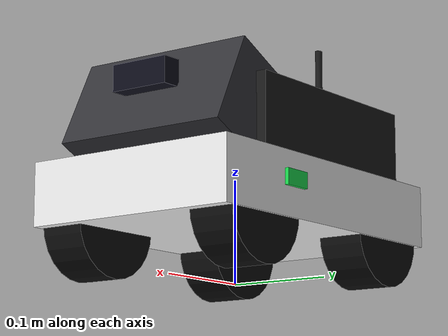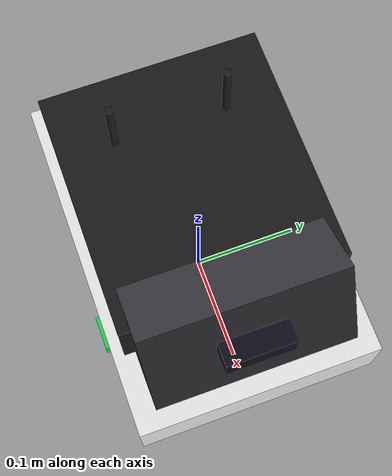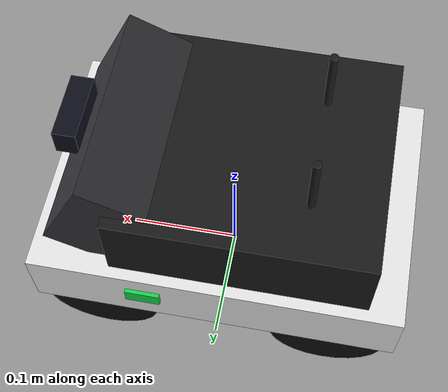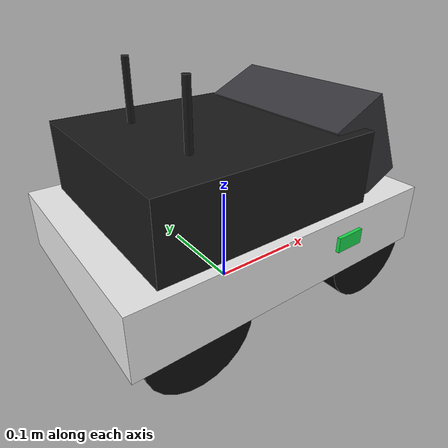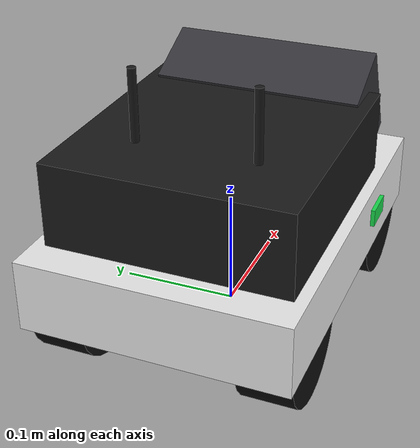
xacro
<?xml version="1.0"?>
<robot name="limo_sim" xmlns:xacro="http://ros.org/wiki/xacro">

  <xacro:arg name="drive_mode" default="diff"/>
  <xacro:property name="DRIVE_MODE" value="$(arg drive_mode)"/>

  <xacro:property name="WHEEL_RADIUS"   value="0.05"/>
  <xacro:property name="WHEEL_WIDTH"    value="0.045"/>
  <xacro:property name="WHEEL_MASS"     value="0.2"/>
  <xacro:property name="WHEELBASE_HALF" value="0.10"/>   <!-- ±x distance from center -->
  <xacro:property name="TRACK_HALF"     value="0.085"/>  <!-- ±y distance from center -->

  <xacro:property name="BASE_Z"         value="0.075"/>  <!-- base_link height above ground -->
  <xacro:property name="WHEEL_Z_OFFSET" value="-0.025"/> <!-- wheel center relative to base_link -->

  <xacro:property name="CHASSIS_X"      value="0.32"/>
  <xacro:property name="CHASSIS_Y"      value="0.22"/>
  <xacro:property name="CHASSIS_Z"      value="0.06"/>

  <xacro:property name="HOOD_X"         value="0.22"/>
  <xacro:property name="HOOD_Y"         value="0.20"/>
  <xacro:property name="HOOD_Z"         value="0.07"/>

  <!-- ================================================================
       MATERIALS (RViz2)
  ================================================================ -->
  <material name="limo_white"><color rgba="0.92 0.92 0.92 1.0"/></material>
  <material name="limo_black"><color rgba="0.10 0.10 0.10 1.0"/></material>
  <material name="limo_dark_grey"><color rgba="0.20 0.20 0.22 1.0"/></material>
  <material name="limo_green"><color rgba="0.10 0.85 0.30 1.0"/></material>
  <material name="wheel_black"><color rgba="0.05 0.05 0.05 1.0"/></material>
  <material name="camera_lens"><color rgba="0.05 0.05 0.10 1.0"/></material>

  <!-- ================================================================
       ROOT FRAMES
  ================================================================ -->
  <link name="base_footprint"/>

  <joint name="base_joint" type="fixed">
    <parent link="base_footprint"/>
    <child link="base_link"/>
    <origin xyz="0 0 ${BASE_Z}" rpy="0 0 0"/>
  </joint>

  <link name="base_link">
    <!-- Lower white deck -->
    <visual>
      <origin xyz="0 0 0" rpy="0 0 0"/>
      <geometry><box size="${CHASSIS_X} ${CHASSIS_Y} ${CHASSIS_Z}"/></geometry>
      <material name="limo_white"/>
    </visual>

    <!-- Upper black hood -->
    <visual>
      <origin xyz="-0.02 0 ${CHASSIS_Z/2 + HOOD_Z/2}" rpy="0 0 0"/>
      <geometry><box size="${HOOD_X} ${HOOD_Y} ${HOOD_Z}"/></geometry>
      <material name="limo_black"/>
    </visual>

    <!-- Tilted front cowl (tablet-style screen) -->
    <visual>
      <origin xyz="0.10 0 ${CHASSIS_Z/2 + 0.045}" rpy="0 -0.45 0"/>
      <geometry><box size="0.06 0.18 0.09"/></geometry>
      <material name="limo_dark_grey"/>
    </visual>

    <!-- Left green LED accent strip -->
    <visual>
      <origin xyz="0.06 ${CHASSIS_Y/2 + 0.001} 0.005" rpy="0 0 0"/>
      <geometry><box size="0.03 0.005 0.015"/></geometry>
      <material name="limo_green"/>
    </visual>
    <!-- Right green LED accent strip -->
    <visual>
      <origin xyz="0.06 ${-CHASSIS_Y/2 - 0.001} 0.005" rpy="0 0 0"/>
      <geometry><box size="0.03 0.005 0.015"/></geometry>
      <material name="limo_green"/>
    </visual>

    <!-- Left antenna -->
    <visual>
      <origin xyz="-0.07 0.05 ${CHASSIS_Z/2 + HOOD_Z + 0.03}" rpy="0 0 0"/>
      <geometry><cylinder radius="0.0035" length="0.06"/></geometry>
      <material name="limo_black"/>
    </visual>
    <!-- Right antenna -->
    <visual>
      <origin xyz="-0.07 -0.05 ${CHASSIS_Z/2 + HOOD_Z + 0.03}" rpy="0 0 0"/>
      <geometry><cylinder radius="0.0035" length="0.06"/></geometry>
      <material name="limo_black"/>
    </visual>

    <collision>
      <origin xyz="0 0 0.075" rpy="0 0 0"/>
      <geometry><box size="${CHASSIS_X} ${CHASSIS_Y} 0.07"/></geometry>
    </collision>

    <inertial>
      <origin xyz="0 0 0.03" rpy="0 0 0"/>
      <mass value="4.0"/>
      <!-- Solid box (0.32 x 0.22 x 0.14): ixx=m/12*(y²+z²), iyy=m/12*(x²+z²), izz=m/12*(x²+y²) -->
      <inertia ixx="0.022667" ixy="0" ixz="0"
               iyy="0.040667" iyz="0"
               izz="0.050267"/>
    </inertial>
  </link>

  <xacro:property name="WHEEL_MU1"
                  value="${0.15 if DRIVE_MODE == 'diff' else 1.0}"/>
  <xacro:property name="WHEEL_MU2_FIXED" value="1.0"/>

  <xacro:macro name="fixed_wheel" params="prefix x y">
    <joint name="${prefix}_wheel_joint" type="continuous">
      <parent link="base_link"/>
      <child  link="${prefix}_wheel_link"/>
      <origin xyz="${x} ${y} ${WHEEL_Z_OFFSET}" rpy="0 0 0"/>
      <axis xyz="0 1 0"/>
      <dynamics damping="${0.005 if DRIVE_MODE == 'diff' else 0.02}"
                friction="0.005"/>
    </joint>

    <link name="${prefix}_wheel_link">
      <visual>
        <origin xyz="0 0 0" rpy="1.5707963 0 0"/>
        <geometry><cylinder radius="${WHEEL_RADIUS}" length="${WHEEL_WIDTH}"/></geometry>
        <material name="wheel_black"/>
      </visual>
      <collision>
        <origin xyz="0 0 0" rpy="0 0 0"/>
        <geometry><sphere radius="${WHEEL_RADIUS}"/></geometry>
      </collision>
      <inertial>
        <origin xyz="0 0 0" rpy="0 0 0"/>
        <mass value="${WHEEL_MASS}"/>
        <!-- Cylinder rotated to spin about Y: principal axis is now Y.
             ixx=izz=m/12*(3r²+l²) = 0.000159
             iyy=m/2*r²            = 0.000250 -->
        <inertia ixx="0.000159" ixy="0" ixz="0"
                 iyy="0.000250" iyz="0"
                 izz="0.000159"/>
      </inertial>
    </link>

    <gazebo reference="${prefix}_wheel_link">
      <material>Gazebo/FlatBlack</material>
      <mu1>${WHEEL_MU1}</mu1>
      <mu2>${WHEEL_MU2_FIXED}</mu2>
      <kp>500000.0</kp>
      <kd>50.0</kd>
      <minDepth>0.001</minDepth>
      <maxVel>1.0</maxVel>
      <fdir1>0 1 0</fdir1>
    </gazebo>
  </xacro:macro>

  <xacro:macro name="steered_wheel" params="prefix x y">
    <!-- Steering link: tiny massless dummy that pivots about Z -->
    <joint name="${prefix}_steer_joint" type="revolute">
      <parent link="base_link"/>
      <child  link="${prefix}_steer_link"/>
      <origin xyz="${x} ${y} ${WHEEL_Z_OFFSET}" rpy="0 0 0"/>
      <axis xyz="0 0 1"/>
      <limit lower="-0.80" upper="0.80" effort="50" velocity="3.0"/>
      <dynamics damping="0.3" friction="0.0"/>
    </joint>

    <link name="${prefix}_steer_link">
      <inertial>
        <origin xyz="0 0 0" rpy="0 0 0"/>
        <mass value="0.2"/>
        <inertia ixx="0.0002" ixy="0" ixz="0"
                 iyy="0.0002" iyz="0"
                 izz="0.0002"/>
      </inertial>
    </link>

    <!-- Wheel link: spins about Y axis directly (no joint-origin rotation) -->
    <joint name="${prefix}_wheel_joint" type="continuous">
      <parent link="${prefix}_steer_link"/>
      <child  link="${prefix}_wheel_link"/>
      <origin xyz="0 0 0" rpy="0 0 0"/>
      <axis xyz="0 1 0"/>
      <dynamics damping="0.005" friction="0.005"/>
    </joint>

    <link name="${prefix}_wheel_link">
      <visual>
        <origin xyz="0 0 0" rpy="1.5707963 0 0"/>
        <geometry><cylinder radius="${WHEEL_RADIUS}" length="${WHEEL_WIDTH}"/></geometry>
        <material name="wheel_black"/>
      </visual>
      <collision>
        <origin xyz="0 0 0" rpy="0 0 0"/>
        <geometry><sphere radius="${WHEEL_RADIUS}"/></geometry>
      </collision>
      <inertial>
        <origin xyz="0 0 0" rpy="0 0 0"/>
        <mass value="${WHEEL_MASS}"/>
        <!-- Cylinder spins about Y: iyy=m/2*r², ixx=izz=m/12*(3r²+l²) -->
        <inertia ixx="0.000159" ixy="0" ixz="0"
                 iyy="0.000250" iyz="0"
                 izz="0.000159"/>
      </inertial>
    </link>

    <gazebo reference="${prefix}_wheel_link">
      <material>Gazebo/FlatBlack</material>
      <mu1>${WHEEL_MU1}</mu1>
      <mu2>1.0</mu2>
      <kp>500000.0</kp>
      <kd>50.0</kd>
      <minDepth>0.001</minDepth>
      <maxVel>1.0</maxVel>
      <fdir1>0 1 0</fdir1>
    </gazebo>
  </xacro:macro>

  <!-- ================================================================
       FRONT WHEELS — steered in ackermann, fixed in diff
  ================================================================ -->
  <xacro:if value="${DRIVE_MODE == 'ackermann'}">
    <xacro:steered_wheel prefix="front_left"  x="${WHEELBASE_HALF}" y="${TRACK_HALF}"/>
    <xacro:steered_wheel prefix="front_right" x="${WHEELBASE_HALF}" y="${-TRACK_HALF}"/>
  </xacro:if>
  <xacro:if value="${DRIVE_MODE == 'diff'}">
    <xacro:fixed_wheel prefix="front_left"  x="${WHEELBASE_HALF}" y="${TRACK_HALF}"/>
    <xacro:fixed_wheel prefix="front_right" x="${WHEELBASE_HALF}" y="${-TRACK_HALF}"/>
  </xacro:if>

  <!-- REAR WHEELS — always fixed-position spinning -->
  <xacro:fixed_wheel prefix="rear_left"  x="${-WHEELBASE_HALF}" y="${TRACK_HALF}"/>
  <xacro:fixed_wheel prefix="rear_right" x="${-WHEELBASE_HALF}" y="${-TRACK_HALF}"/>

  <joint name="camera_joint" type="fixed">
    <parent link="base_link"/>
    <child  link="camera_link"/>
    <origin xyz="0.135 0 0.10" rpy="0 0 0"/>
  </joint>

  <link name="camera_link">
    <visual>
      <origin xyz="0 0 0" rpy="0 0 0"/>
      <geometry><box size="0.02 0.06 0.025"/></geometry>
      <material name="camera_lens"/>
    </visual>
    <collision>
      <origin xyz="0 0 0" rpy="0 0 0"/>
      <geometry><box size="0.02 0.06 0.025"/></geometry>
    </collision>
    <inertial>
      <origin xyz="0 0 0" rpy="0 0 0"/>
      <mass value="0.03"/>
      <inertia ixx="1e-5" ixy="0" ixz="0"
               iyy="1e-5" iyz="0"
               izz="1e-5"/>
    </inertial>
  </link>

  <joint name="camera_optical_joint" type="fixed">
    <parent link="camera_link"/>
    <child  link="camera_optical_link"/>
    <!-- Rotate URDF frame (x-fwd, y-left, z-up) → optical (x-right, y-down, z-fwd) -->
    <origin xyz="0 0 0" rpy="-1.5707963 0 -1.5707963"/>
  </joint>
  <link name="camera_optical_link"/>

  <gazebo reference="camera_link">
    <material>Gazebo/FlatBlack</material>
    <sensor type="camera" name="limo_camera_sensor">
      <update_rate>30.0</update_rate>
      <visualize>false</visualize>
      <always_on>true</always_on>
      <camera>
        <horizontal_fov>1.2217</horizontal_fov>
        <image>
          <width>640</width>
          <height>480</height>
          <format>R8G8B8</format>
        </image>
        <clip>
          <near>0.02</near>
          <far>30.0</far>
        </clip>
        <noise>
          <type>gaussian</type>
          <mean>0.0</mean>
          <stddev>0.005</stddev>
        </noise>
      </camera>
      <plugin name="limo_camera_controller" filename="libgazebo_ros_camera.so">
        <ros>
          <remapping>~/image_raw:=/camera/image_raw</remapping>
          <remapping>~/camera_info:=/camera/camera_info</remapping>
        </ros>
        <camera_name>camera</camera_name>
        <frame_name>camera_optical_link</frame_name>
        <hack_baseline>0.0</hack_baseline>
      </plugin>
    </sensor>
  </gazebo>

  <gazebo>
    <self_collide>false</self_collide>
  </gazebo>

  <!-- ================================================================
       BODY GAZEBO MATERIAL OVERRIDES
  ================================================================ -->
  <gazebo reference="base_link">
    <material>Gazebo/White</material>
    <mu1>0.5</mu1>
    <mu2>0.5</mu2>
  </gazebo>

  <!-- ================================================================
       DRIVE PLUGINS — chosen by DRIVE_MODE
  ================================================================ -->

  <xacro:if value="${DRIVE_MODE == 'diff'}">
    <gazebo>
      <plugin name="limo_diff_drive" filename="libgazebo_ros_diff_drive.so">
        <ros/>
        <update_rate>50</update_rate>
        <num_wheel_pairs>2</num_wheel_pairs>
        <left_joint>front_left_wheel_joint</left_joint>
        <right_joint>front_right_wheel_joint</right_joint>
        <left_joint>rear_left_wheel_joint</left_joint>
        <right_joint>rear_right_wheel_joint</right_joint>
        <wheel_separation>${TRACK_HALF*2}</wheel_separation>
        <wheel_separation>${TRACK_HALF*2}</wheel_separation>
        <wheel_diameter>${WHEEL_RADIUS*2}</wheel_diameter>
        <wheel_diameter>${WHEEL_RADIUS*2}</wheel_diameter>
        <max_wheel_torque>5</max_wheel_torque>
        <max_wheel_acceleration>6.0</max_wheel_acceleration>
        <command_topic>cmd_vel</command_topic>
        <odometry_topic>odom</odometry_topic>
        <odometry_frame>odom</odometry_frame>
        <robot_base_frame>base_footprint</robot_base_frame>
        <publish_odom>true</publish_odom>
        <publish_odom_tf>true</publish_odom_tf>
        <publish_wheel_tf>false</publish_wheel_tf>
      </plugin>
    </gazebo>
  </xacro:if>

  <xacro:if value="${DRIVE_MODE == 'ackermann'}">
    <gazebo>
      <plugin name="limo_ackermann_drive" filename="libgazebo_ros_ackermann_drive.so">
        <ros/>
        <update_rate>500.0</update_rate>

        <front_left_joint>front_left_wheel_joint</front_left_joint>
        <front_right_joint>front_right_wheel_joint</front_right_joint>
        <rear_left_joint>rear_left_wheel_joint</rear_left_joint>
        <rear_right_joint>rear_right_wheel_joint</rear_right_joint>
        <left_steering_joint>front_left_steer_joint</left_steering_joint>
        <right_steering_joint>front_right_steer_joint</right_steering_joint>

        <max_steer>0.6</max_steer>
        <max_speed>2.0</max_speed>

        <!-- Robot-specific geometry -->
        <wheel_radius>${WHEEL_RADIUS}</wheel_radius>
        <wheelbase>${WHEELBASE_HALF * 2}</wheelbase>
        <wheel_track>${TRACK_HALF * 2}</wheel_track>

        <left_steering_pid_gain>40.0 0 0</left_steering_pid_gain>
        <left_steering_i_range>0 0</left_steering_i_range>
        <right_steering_pid_gain>40.0 0 0</right_steering_pid_gain>
        <right_steering_i_range>0 0</right_steering_i_range>
        <linear_velocity_pid_gain>0.10 0 0</linear_velocity_pid_gain>
        <linear_velocity_i_range>0 0</linear_velocity_i_range>

        <command_topic>cmd_vel</command_topic>
        <odometry_topic>odom</odometry_topic>
        <odometry_frame>odom</odometry_frame>
        <robot_base_frame>base_footprint</robot_base_frame>

        <publish_odom>true</publish_odom>
        <publish_odom_tf>true</publish_odom_tf>
        <publish_wheel_tf>false</publish_wheel_tf>
        <publish_distance>false</publish_distance>
      </plugin>
    </gazebo>
  </xacro:if>

  <gazebo>
    <plugin name="limo_joint_state" filename="libgazebo_ros_joint_state_publisher.so">
      <ros>
        <remapping>~/out:=joint_states</remapping>
      </ros>
      <update_rate>30</update_rate>
      <joint_name>front_left_wheel_joint</joint_name>
      <joint_name>front_right_wheel_joint</joint_name>
      <joint_name>rear_left_wheel_joint</joint_name>
      <joint_name>rear_right_wheel_joint</joint_name>
      <xacro:if value="${DRIVE_MODE == 'ackermann'}">
        <joint_name>front_left_steer_joint</joint_name>
        <joint_name>front_right_steer_joint</joint_name>
      </xacro:if>
    </plugin>
  </gazebo>

</robot>
